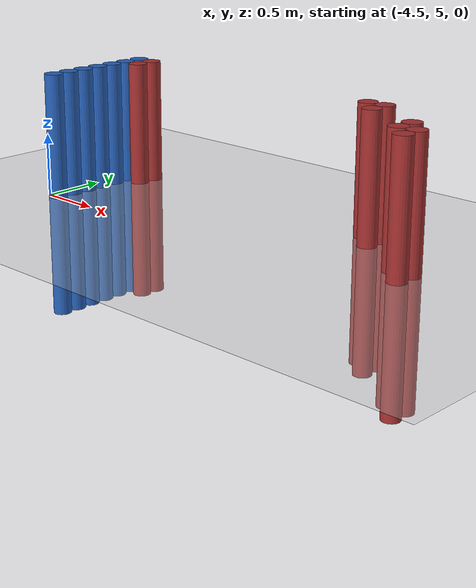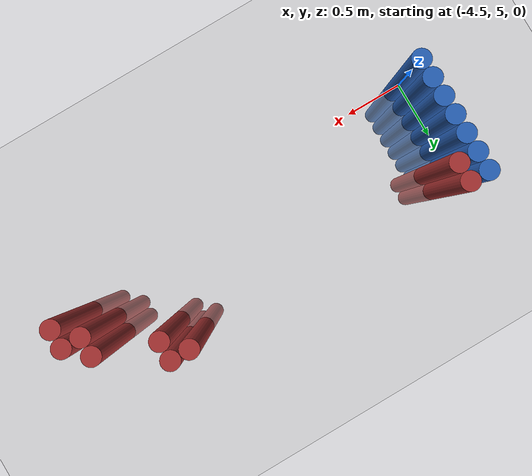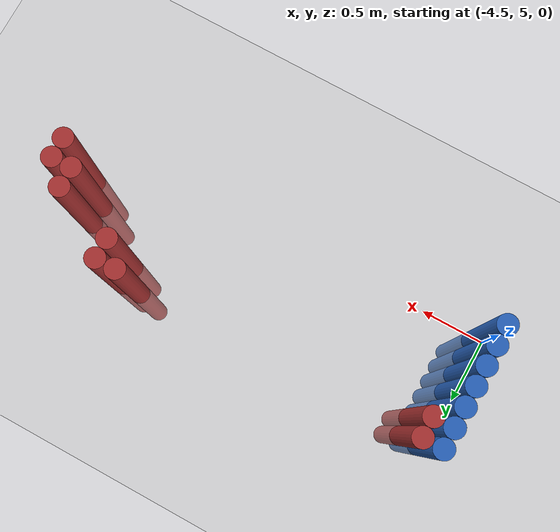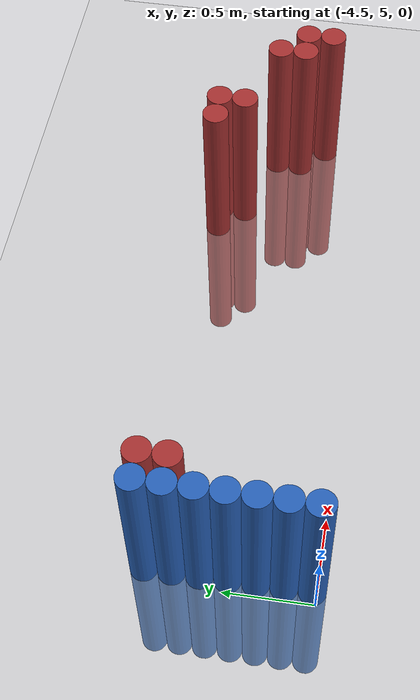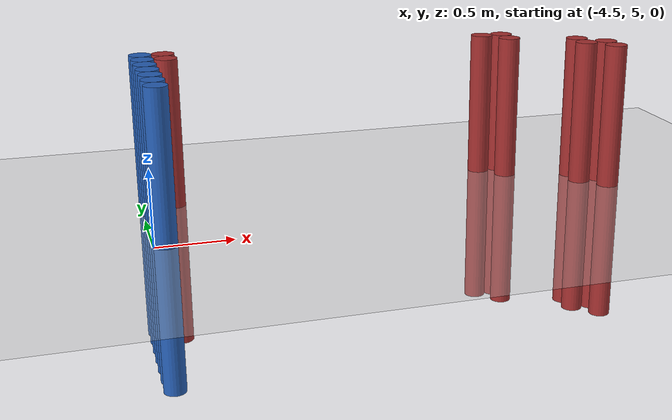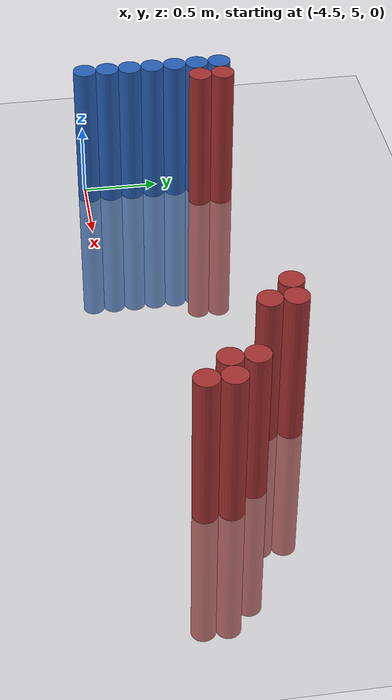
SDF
<sdf version="1.6">
 <world name="default">
  <model name="ground_plane">
   <static>1</static>
   <link name="link">
    <collision name="collision">
     <geometry><plane><normal>0 0 1</normal><size>100 100</size></plane></geometry>
     <surface><friction><ode><mu>100</mu><mu2>50</mu2></ode></friction></surface>
    </collision>
    <visual name="visual">
     <cast_shadows>0</cast_shadows>
     <geometry><plane><normal>0 0 1</normal><size>100 100</size></plane></geometry>
     <material>
      <script><uri>file://media/materials/scripts/gazebo.material</uri><name>Gazebo/Grey</name></script>
     </material>
    </visual>
   </link>
  </model>
  <model name="unit_cylinder_95">
   <static>1</static>
   <pose>-4.425000 5.025000 0.000000 0.000000 0.000000 0.000000</pose>
   <link name="link">
    <inertial>
     <mass>1</mass>
     <inertia><ixx>0.145833</ixx><ixy>0</ixy><ixz>0</ixz><iyy>0.145833</iyy><iyz>0</iyz><izz>0.125</izz></inertia>
    </inertial>
    <collision name="collision">
     <geometry><cylinder><radius>0.075000</radius><length>2</length></cylinder></geometry>
    </collision>
    <visual name="visual">
     <geometry><cylinder><radius>0.075000</radius><length>2</length></cylinder></geometry>
     <material>
      <ambient>0.152000 0.379000 0.720000 1</ambient>
      <diffuse>0.152000 0.379000 0.720000 1</diffuse>
     </material>
     <material>
      <script><name>Gazebo/Grey</name><uri>file://media/materials/scripts/gazebo.material</uri></script>
     </material>
    </visual>
   </link>
  </model>
  <model name="unit_cylinder_96">
   <static>1</static>
   <pose>-4.425000 5.175000 0.000000 0.000000 0.000000 0.000000</pose>
   <link name="link">
    <inertial>
     <mass>1</mass>
     <inertia><ixx>0.145833</ixx><ixy>0</ixy><ixz>0</ixz><iyy>0.145833</iyy><iyz>0</iyz><izz>0.125</izz></inertia>
    </inertial>
    <collision name="collision">
     <geometry><cylinder><radius>0.075000</radius><length>2</length></cylinder></geometry>
    </collision>
    <visual name="visual">
     <geometry><cylinder><radius>0.075000</radius><length>2</length></cylinder></geometry>
     <material>
      <ambient>0.152000 0.379000 0.720000 1</ambient>
      <diffuse>0.152000 0.379000 0.720000 1</diffuse>
     </material>
     <material>
      <script><name>Gazebo/Grey</name><uri>file://media/materials/scripts/gazebo.material</uri></script>
     </material>
    </visual>
   </link>
  </model>
  <model name="unit_cylinder_97">
   <static>1</static>
   <pose>-4.425000 5.325000 0.000000 0.000000 0.000000 0.000000</pose>
   <link name="link">
    <inertial>
     <mass>1</mass>
     <inertia><ixx>0.145833</ixx><ixy>0</ixy><ixz>0</ixz><iyy>0.145833</iyy><iyz>0</iyz><izz>0.125</izz></inertia>
    </inertial>
    <collision name="collision">
     <geometry><cylinder><radius>0.075000</radius><length>2</length></cylinder></geometry>
    </collision>
    <visual name="visual">
     <geometry><cylinder><radius>0.075000</radius><length>2</length></cylinder></geometry>
     <material>
      <ambient>0.152000 0.379000 0.720000 1</ambient>
      <diffuse>0.152000 0.379000 0.720000 1</diffuse>
     </material>
     <material>
      <script><name>Gazebo/Grey</name><uri>file://media/materials/scripts/gazebo.material</uri></script>
     </material>
    </visual>
   </link>
  </model>
  <model name="unit_cylinder_98">
   <static>1</static>
   <pose>-4.425000 5.475000 0.000000 0.000000 0.000000 0.000000</pose>
   <link name="link">
    <inertial>
     <mass>1</mass>
     <inertia><ixx>0.145833</ixx><ixy>0</ixy><ixz>0</ixz><iyy>0.145833</iyy><iyz>0</iyz><izz>0.125</izz></inertia>
    </inertial>
    <collision name="collision">
     <geometry><cylinder><radius>0.075000</radius><length>2</length></cylinder></geometry>
    </collision>
    <visual name="visual">
     <geometry><cylinder><radius>0.075000</radius><length>2</length></cylinder></geometry>
     <material>
      <ambient>0.152000 0.379000 0.720000 1</ambient>
      <diffuse>0.152000 0.379000 0.720000 1</diffuse>
     </material>
     <material>
      <script><name>Gazebo/Grey</name><uri>file://media/materials/scripts/gazebo.material</uri></script>
     </material>
    </visual>
   </link>
  </model>
  <model name="unit_cylinder_99">
   <static>1</static>
   <pose>-4.425000 5.625000 0.000000 0.000000 0.000000 0.000000</pose>
   <link name="link">
    <inertial>
     <mass>1</mass>
     <inertia><ixx>0.145833</ixx><ixy>0</ixy><ixz>0</ixz><iyy>0.145833</iyy><iyz>0</iyz><izz>0.125</izz></inertia>
    </inertial>
    <collision name="collision">
     <geometry><cylinder><radius>0.075000</radius><length>2</length></cylinder></geometry>
    </collision>
    <visual name="visual">
     <geometry><cylinder><radius>0.075000</radius><length>2</length></cylinder></geometry>
     <material>
      <ambient>0.152000 0.379000 0.720000 1</ambient>
      <diffuse>0.152000 0.379000 0.720000 1</diffuse>
     </material>
     <material>
      <script><name>Gazebo/Grey</name><uri>file://media/materials/scripts/gazebo.material</uri></script>
     </material>
    </visual>
   </link>
  </model>
  <model name="unit_cylinder_100">
   <static>1</static>
   <pose>-4.425000 5.775000 0.000000 0.000000 0.000000 0.000000</pose>
   <link name="link">
    <inertial>
     <mass>1</mass>
     <inertia><ixx>0.145833</ixx><ixy>0</ixy><ixz>0</ixz><iyy>0.145833</iyy><iyz>0</iyz><izz>0.125</izz></inertia>
    </inertial>
    <collision name="collision">
     <geometry><cylinder><radius>0.075000</radius><length>2</length></cylinder></geometry>
    </collision>
    <visual name="visual">
     <geometry><cylinder><radius>0.075000</radius><length>2</length></cylinder></geometry>
     <material>
      <ambient>0.152000 0.379000 0.720000 1</ambient>
      <diffuse>0.152000 0.379000 0.720000 1</diffuse>
     </material>
     <material>
      <script><name>Gazebo/Grey</name><uri>file://media/materials/scripts/gazebo.material</uri></script>
     </material>
    </visual>
   </link>
  </model>
  <model name="unit_cylinder_101">
   <static>1</static>
   <pose>-4.425000 5.925000 0.000000 0.000000 0.000000 0.000000</pose>
   <link name="link">
    <inertial>
     <mass>1</mass>
     <inertia><ixx>0.145833</ixx><ixy>0</ixy><ixz>0</ixz><iyy>0.145833</iyy><iyz>0</iyz><izz>0.125</izz></inertia>
    </inertial>
    <collision name="collision">
     <geometry><cylinder><radius>0.075000</radius><length>2</length></cylinder></geometry>
    </collision>
    <visual name="visual">
     <geometry><cylinder><radius>0.075000</radius><length>2</length></cylinder></geometry>
     <material>
      <ambient>0.152000 0.379000 0.720000 1</ambient>
      <diffuse>0.152000 0.379000 0.720000 1</diffuse>
     </material>
     <material>
      <script><name>Gazebo/Grey</name><uri>file://media/materials/scripts/gazebo.material</uri></script>
     </material>
    </visual>
   </link>
  </model>
  <model name="unit_cylinder_126">
   <static>1</static>
   <pose>-4.275000 5.775000 0.000000 0.000000 0.000000 0.000000</pose>
   <link name="link">
    <inertial>
     <mass>1</mass>
     <inertia><ixx>0.145833</ixx><ixy>0</ixy><ixz>0</ixz><iyy>0.145833</iyy><iyz>0</iyz><izz>0.125</izz></inertia>
    </inertial>
    <collision name="collision">
     <geometry><cylinder><radius>0.075000</radius><length>2</length></cylinder></geometry>
    </collision>
    <visual name="visual">
     <geometry><cylinder><radius>0.075000</radius><length>2</length></cylinder></geometry>
     <material>
      <ambient>0.648000 0.192000 0.192000 1</ambient>
      <diffuse>0.648000 0.192000 0.192000 1</diffuse>
     </material>
     <material>
      <script><name>Gazebo/Grey</name><uri>file://media/materials/scripts/gazebo.material</uri></script>
     </material>
    </visual>
   </link>
  </model>
  <model name="unit_cylinder_127">
   <static>1</static>
   <pose>-4.275000 5.925000 0.000000 0.000000 0.000000 0.000000</pose>
   <link name="link">
    <inertial>
     <mass>1</mass>
     <inertia><ixx>0.145833</ixx><ixy>0</ixy><ixz>0</ixz><iyy>0.145833</iyy><iyz>0</iyz><izz>0.125</izz></inertia>
    </inertial>
    <collision name="collision">
     <geometry><cylinder><radius>0.075000</radius><length>2</length></cylinder></geometry>
    </collision>
    <visual name="visual">
     <geometry><cylinder><radius>0.075000</radius><length>2</length></cylinder></geometry>
     <material>
      <ambient>0.648000 0.192000 0.192000 1</ambient>
      <diffuse>0.648000 0.192000 0.192000 1</diffuse>
     </material>
     <material>
      <script><name>Gazebo/Grey</name><uri>file://media/materials/scripts/gazebo.material</uri></script>
     </material>
    </visual>
   </link>
  </model>
  <model name="unit_cylinder_189">
   <static>1</static>
   <pose>-2.025000 5.925000 0.000000 0.000000 0.000000 0.000000</pose>
   <link name="link">
    <inertial>
     <mass>1</mass>
     <inertia><ixx>0.145833</ixx><ixy>0</ixy><ixz>0</ixz><iyy>0.145833</iyy><iyz>0</iyz><izz>0.125</izz></inertia>
    </inertial>
    <collision name="collision">
     <geometry><cylinder><radius>0.075000</radius><length>2</length></cylinder></geometry>
    </collision>
    <visual name="visual">
     <geometry><cylinder><radius>0.075000</radius><length>2</length></cylinder></geometry>
     <material>
      <ambient>0.648000 0.192000 0.192000 1</ambient>
      <diffuse>0.648000 0.192000 0.192000 1</diffuse>
     </material>
     <material>
      <script><name>Gazebo/Grey</name><uri>file://media/materials/scripts/gazebo.material</uri></script>
     </material>
    </visual>
   </link>
  </model>
  <model name="unit_cylinder_191">
   <static>1</static>
   <pose>-1.875000 5.775000 0.000000 0.000000 0.000000 0.000000</pose>
   <link name="link">
    <inertial>
     <mass>1</mass>
     <inertia><ixx>0.145833</ixx><ixy>0</ixy><ixz>0</ixz><iyy>0.145833</iyy><iyz>0</iyz><izz>0.125</izz></inertia>
    </inertial>
    <collision name="collision">
     <geometry><cylinder><radius>0.075000</radius><length>2</length></cylinder></geometry>
    </collision>
    <visual name="visual">
     <geometry><cylinder><radius>0.075000</radius><length>2</length></cylinder></geometry>
     <material>
      <ambient>0.648000 0.192000 0.192000 1</ambient>
      <diffuse>0.648000 0.192000 0.192000 1</diffuse>
     </material>
     <material>
      <script><name>Gazebo/Grey</name><uri>file://media/materials/scripts/gazebo.material</uri></script>
     </material>
    </visual>
   </link>
  </model>
  <model name="unit_cylinder_192">
   <static>1</static>
   <pose>-1.875000 5.925000 0.000000 0.000000 0.000000 0.000000</pose>
   <link name="link">
    <inertial>
     <mass>1</mass>
     <inertia><ixx>0.145833</ixx><ixy>0</ixy><ixz>0</ixz><iyy>0.145833</iyy><iyz>0</iyz><izz>0.125</izz></inertia>
    </inertial>
    <collision name="collision">
     <geometry><cylinder><radius>0.075000</radius><length>2</length></cylinder></geometry>
    </collision>
    <visual name="visual">
     <geometry><cylinder><radius>0.075000</radius><length>2</length></cylinder></geometry>
     <material>
      <ambient>0.648000 0.192000 0.192000 1</ambient>
      <diffuse>0.648000 0.192000 0.192000 1</diffuse>
     </material>
     <material>
      <script><name>Gazebo/Grey</name><uri>file://media/materials/scripts/gazebo.material</uri></script>
     </material>
    </visual>
   </link>
  </model>
  <model name="unit_cylinder_199">
   <static>1</static>
   <pose>-1.425000 5.475000 0.000000 0.000000 0.000000 0.000000</pose>
   <link name="link">
    <inertial>
     <mass>1</mass>
     <inertia><ixx>0.145833</ixx><ixy>0</ixy><ixz>0</ixz><iyy>0.145833</iyy><iyz>0</iyz><izz>0.125</izz></inertia>
    </inertial>
    <collision name="collision">
     <geometry><cylinder><radius>0.075000</radius><length>2</length></cylinder></geometry>
    </collision>
    <visual name="visual">
     <geometry><cylinder><radius>0.075000</radius><length>2</length></cylinder></geometry>
     <material>
      <ambient>0.648000 0.192000 0.192000 1</ambient>
      <diffuse>0.648000 0.192000 0.192000 1</diffuse>
     </material>
     <material>
      <script><name>Gazebo/Grey</name><uri>file://media/materials/scripts/gazebo.material</uri></script>
     </material>
    </visual>
   </link>
  </model>
  <model name="unit_cylinder_200">
   <static>1</static>
   <pose>-1.425000 5.625000 0.000000 0.000000 0.000000 0.000000</pose>
   <link name="link">
    <inertial>
     <mass>1</mass>
     <inertia><ixx>0.145833</ixx><ixy>0</ixy><ixz>0</ixz><iyy>0.145833</iyy><iyz>0</iyz><izz>0.125</izz></inertia>
    </inertial>
    <collision name="collision">
     <geometry><cylinder><radius>0.075000</radius><length>2</length></cylinder></geometry>
    </collision>
    <visual name="visual">
     <geometry><cylinder><radius>0.075000</radius><length>2</length></cylinder></geometry>
     <material>
      <ambient>0.648000 0.192000 0.192000 1</ambient>
      <diffuse>0.648000 0.192000 0.192000 1</diffuse>
     </material>
     <material>
      <script><name>Gazebo/Grey</name><uri>file://media/materials/scripts/gazebo.material</uri></script>
     </material>
    </visual>
   </link>
  </model>
  <model name="unit_cylinder_201">
   <static>1</static>
   <pose>-1.275000 5.325000 0.000000 0.000000 0.000000 0.000000</pose>
   <link name="link">
    <inertial>
     <mass>1</mass>
     <inertia><ixx>0.145833</ixx><ixy>0</ixy><ixz>0</ixz><iyy>0.145833</iyy><iyz>0</iyz><izz>0.125</izz></inertia>
    </inertial>
    <collision name="collision">
     <geometry><cylinder><radius>0.075000</radius><length>2</length></cylinder></geometry>
    </collision>
    <visual name="visual">
     <geometry><cylinder><radius>0.075000</radius><length>2</length></cylinder></geometry>
     <material>
      <ambient>0.648000 0.192000 0.192000 1</ambient>
      <diffuse>0.648000 0.192000 0.192000 1</diffuse>
     </material>
     <material>
      <script><name>Gazebo/Grey</name><uri>file://media/materials/scripts/gazebo.material</uri></script>
     </material>
    </visual>
   </link>
  </model>
  <model name="unit_cylinder_202">
   <static>1</static>
   <pose>-1.275000 5.475000 0.000000 0.000000 0.000000 0.000000</pose>
   <link name="link">
    <inertial>
     <mass>1</mass>
     <inertia><ixx>0.145833</ixx><ixy>0</ixy><ixz>0</ixz><iyy>0.145833</iyy><iyz>0</iyz><izz>0.125</izz></inertia>
    </inertial>
    <collision name="collision">
     <geometry><cylinder><radius>0.075000</radius><length>2</length></cylinder></geometry>
    </collision>
    <visual name="visual">
     <geometry><cylinder><radius>0.075000</radius><length>2</length></cylinder></geometry>
     <material>
      <ambient>0.648000 0.192000 0.192000 1</ambient>
      <diffuse>0.648000 0.192000 0.192000 1</diffuse>
     </material>
     <material>
      <script><name>Gazebo/Grey</name><uri>file://media/materials/scripts/gazebo.material</uri></script>
     </material>
    </visual>
   </link>
  </model>
 </world>
</sdf>
